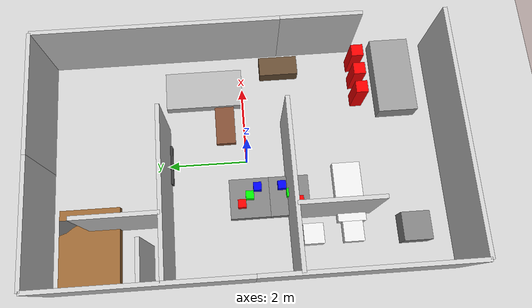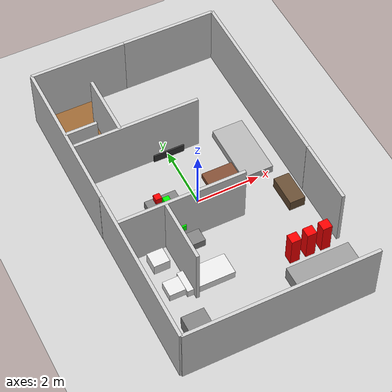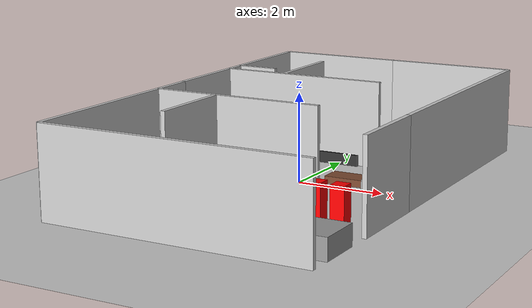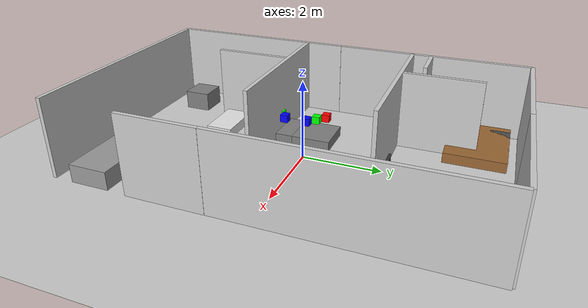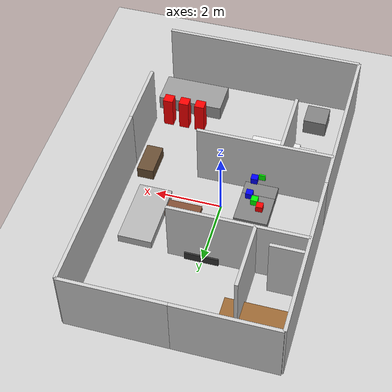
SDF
<?xml version="1.0" ?>
<sdf version="1.6">
  <world name="simple_world">
    <!-- Ground Plane -->
    <include>
      <uri>model://ground_plane</uri>
    </include>

    <!-- Lighting -->
    <include>
      <uri>model://sun</uri>
    </include>

    <!-- Apartment Model -->
    <model name="apartment">
      <static>true</static>
      <!-- Outer Walls (6m x 10m apartment) -->
      <link name="outer_walls">
        <visual name="north_wall_1_visual">
          <pose>-1.5 5 1 0 0 0</pose>
          <geometry><box><size>3 0.1 2</size></box></geometry>
          <material><ambient>0.8 0.8 0.8 1</ambient></material>
        </visual>
        <collision name="north_wall_1_collision">
          <pose>-1.5 5 1 0 0 0</pose>
          <geometry><box><size>3 0.1 2</size></box></geometry>
        </collision>
        <visual name="north_wall_2_visual">
          <pose>1.5 5 1 0 0 0</pose>
          <geometry><box><size>3 0.1 2</size></box></geometry>
          <material><ambient>0.8 0.8 0.8 1</ambient></material>
        </visual>
        <collision name="north_wall_2_collision">
          <pose>1.5 5 1 0 0 0</pose>
          <geometry><box><size>3 0.1 2</size></box></geometry>
        </collision>
        <visual name="south_wall_visual">
          <pose>0 -5 1 0 0 0</pose>
          <geometry><box><size>6 0.1 2</size></box></geometry>
          <material><ambient>0.8 0.8 0.8 1</ambient></material>
        </visual>
        <collision name="south_wall_collision">
          <pose>0 -5 1 0 0 0</pose>
          <geometry><box><size>6 0.1 2</size></box></geometry>
        </collision>
        <visual name="east_wall_1_visual">
          <pose>3 2 1 0 0 1.57</pose>
          <geometry><box><size>6 0.1 2</size></box></geometry>
          <material><ambient>0.8 0.8 0.8 1</ambient></material>
        </visual>
        <collision name="east_wall_1_collision">
          <pose>3 2 1 0 0 1.57</pose>
          <geometry><box><size>6 0.1 2</size></box></geometry>
        </collision>
        <visual name="east_wall_2_visual">
          <pose>3 -2 1 0 0 1.57</pose>
          <geometry><box><size>2 0.1 2</size></box></geometry>
          <material><ambient>0.8 0.8 0.8 1</ambient></material>
        </visual>
        <collision name="east_wall_2_collision">
          <pose>3 -2 1 0 0 1.57</pose>
          <geometry><box><size>2 0.1 2</size></box></geometry>
        </collision>
        <visual name="west_wall_1_visual">
          <pose>-3 2.5 1 0 0 1.57</pose>
          <geometry><box><size>5 0.1 2</size></box></geometry>
          <material><ambient>0.8 0.8 0.8 1</ambient></material>
        </visual>
        <collision name="west_wall_1_collision">
          <pose>-3 2.5 1 0 0 1.57</pose>
          <geometry><box><size>5 0.1 2</size></box></geometry>
        </collision>
        <visual name="west_wall_2_visual">
          <pose>-3 -2.5 1 0 0 1.57</pose>
          <geometry><box><size>5 0.1 2</size></box></geometry>
          <material><ambient>0.8 0.8 0.8 1</ambient></material>
        </visual>
        <collision name="west_wall_2_collision">
          <pose>-3 -2.5 1 0 0 1.57</pose>
          <geometry><box><size>5 0.1 2</size></box></geometry>
        </collision>
      </link>

      <!-- Internal Walls -->
      <link name="internal_walls">
        <visual name="bedroom_wall_visual">
          <pose>-1 2 1 0 0 0</pose>
          <geometry><box><size>4 0.1 2</size></box></geometry>
          <material><ambient>0.8 0.8 0.8 1</ambient></material>
        </visual>
        <collision name="bedroom_wall_collision">
          <pose>-1 2 1 0 0 0</pose>
          <geometry><box><size>4 0.1 2</size></box></geometry>
        </collision>
        <visual name="closet_wall_1_visual">
          <pose>-1.5 3 1 0 0 1.57</pose>
          <geometry><box><size>2 0.1 2</size></box></geometry>
          <material><ambient>0.8 0.8 0.8 1</ambient></material>
        </visual>
        <collision name="closet_wall_1_collision">
          <pose>-1.5 3 1 0 0 1.57</pose>
          <geometry><box><size>2 0.1 2</size></box></geometry>
        </collision>
        <visual name="closet_wall_2_visual">
          <pose>-2.5 2.5 1 0 0 0</pose>
          <geometry><box><size>1 0.1 2</size></box></geometry>
          <material><ambient>0.8 0.8 0.8 1</ambient></material>
        </visual>
        <collision name="closet_wall_2_collision">
          <pose>-2.5 2.5 1 0 0 0</pose>
          <geometry><box><size>1 0.1 2</size></box></geometry>
        </collision>
        <visual name="bathroom_wall_1_visual">
          <pose>-1 -1 1 0 0 0</pose>
          <geometry><box><size>4 0.1 2</size></box></geometry>
          <material><ambient>0.8 0.8 0.8 1</ambient></material>
        </visual>
        <collision name="bathroom_wall_1_collision">
          <pose>-1 -1 1 0 0 0</pose>
          <geometry><box><size>4 0.1 2</size></box></geometry>
        </collision>
        <visual name="bathroom_wall_2_visual">
          <pose>-1.5 -2 1 0 0 1.57</pose>
          <geometry><box><size>2 0.1 2</size></box></geometry>
          <material><ambient>0.8 0.8 0.8 1</ambient></material>
        </visual>
        <collision name="bathroom_wall_2_collision">
          <pose>-1.5 -2 1 0 0 1.57</pose>
          <geometry><box><size>2 0.1 2</size></box></geometry>
        </collision>
      </link>
    </model>

    <!-- Furniture for Bedroom -->
    <model name="bedroom_bed">
      <pose>-2 4 0 0 0 0</pose>
      <link name="link">
        <visual name="visual">
          <geometry><box><size>2 1.5 0.5</size></box></geometry>
          <material><ambient>0.6 0.4 0.2 1</ambient></material>
        </visual>
        <collision name="collision">
          <geometry><box><size>2 1.5 0.5</size></box></geometry>
        </collision>
      </link>
    </model>
    <model name="bedroom_nightstand_1">
      <pose>-2.5 4.5 0 0 0 1.57</pose>
      <link name="link">
        <visual name="visual">
          <geometry><box><size>0.5 0.5 0.5</size></box></geometry>
          <material><ambient>0.3 0.3 0.3 1</ambient></material>
        </visual>
        <collision name="collision">
          <geometry><box><size>0.5 0.5 0.5</size></box></geometry>
        </collision>
      </link>
    </model>
    <model name="bedroom_nightstand_2">
      <pose>-1.5 4.5 0 0 0 1.57</pose>
      <link name="link">
        <visual name="visual">
          <geometry><box><size>0.5 0.5 0.5</size></box></geometry>
          <material><ambient>0.3 0.3 0.3 1</ambient></material>
        </visual>
        <collision name="collision">
          <geometry><box><size>0.5 0.5 0.5</size></box></geometry>
        </collision>
      </link>
    </model>

    <!-- Furniture for Living Room -->
    <model name="living_room_sofa">
      <pose>2 1 0 0 0 1.57</pose>
      <link name="link">
        <visual name="visual">
          <geometry><box><size>2 1 0.5</size></box></geometry>
          <material><ambient>0.7 0.7 0.7 1</ambient></material>
        </visual>
        <collision name="collision">
          <geometry><box><size>2 1 0.5</size></box></geometry>
        </collision>
      </link>
    </model>
    <model name="living_room_coffee_table">
      <pose>1 0.5 0 0 0 0</pose>
      <link name="link">
        <visual name="visual">
          <geometry><box><size>1 0.5 0.3</size></box></geometry>
          <material><ambient>0.5 0.3 0.2 1</ambient></material>
        </visual>
        <collision name="collision">
          <geometry><box><size>1 0.5 0.3</size></box></geometry>
        </collision>
      </link>
    </model>
    <model name="living_room_tv">
      <pose>0 2 0 0 0 3.14</pose>
      <link name="link">
        <visual name="visual">
          <geometry><box><size>1 0.2 0.5</size></box></geometry>
          <material><ambient>0.2 0.2 0.2 1</ambient></material>
        </visual>
        <collision name="collision">
          <geometry><box><size>1 0.2 0.5</size></box></geometry>
        </collision>
      </link>
    </model>
    <model name="living_room_desk">
      <pose>2.5 -1 0 0 0 1.57</pose>
      <link name="link">
        <visual name="visual">
          <geometry><box><size>1 0.5 0.7</size></box></geometry>
          <material><ambient>0.4 0.3 0.2 1</ambient></material>
        </visual>
        <collision name="collision">
          <geometry><box><size>1 0.5 0.7</size></box></geometry>
        </collision>
      </link>
    </model>

    <!-- Furniture for Kitchen -->
    <model name="kitchen_counter">
      <pose>2 -4 0 0 0 0</pose>
      <link name="link">
        <visual name="visual">
          <geometry><box><size>2 1 0.9</size></box></geometry>
          <material><ambient>0.6 0.6 0.6 1</ambient></material>
        </visual>
        <collision name="collision">
          <geometry><box><size>2 1 0.9</size></box></geometry>
        </collision>
      </link>
    </model>
    <model name="bar_stools">
      <pose>1.5 -3 0 0 0 0</pose>
      <link name="stool_1">
        <visual name="visual">
          <pose>0 0 0.5 0 0 0</pose>
          <geometry><box><size>0.3 0.3 1</size></box></geometry>
          <material><ambient>1 0 0 1</ambient></material>
        </visual>
        <collision name="collision">
          <pose>0 0 0.5 0 0 0</pose>
          <geometry><box><size>0.3 0.3 1</size></box></geometry>
        </collision>
      </link>
      <link name="stool_2">
        <visual name="visual">
          <pose>0.5 0 0.5 0 0 0</pose>
          <geometry><box><size>0.3 0.3 1</size></box></geometry>
          <material><ambient>1 0 0 1</ambient></material>
        </visual>
        <collision name="collision">
          <pose>0.5 0 0.5 0 0 0</pose>
          <geometry><box><size>0.3 0.3 1</size></box></geometry>
        </collision>
      </link>
      <link name="stool_3">
        <visual name="visual">
          <pose>1 0 0.5 0 0 0</pose>
          <geometry><box><size>0.3 0.3 1</size></box></geometry>
          <material><ambient>1 0 0 1</ambient></material>
        </visual>
        <collision name="collision">
          <pose>1 0 0.5 0 0 0</pose>
          <geometry><box><size>0.3 0.3 1</size></box></geometry>
        </collision>
      </link>
    </model>

    <!-- Furniture for Bathroom -->
    <model name="toilet">
      <pose>-2 -1.5 0 0 0 1.57</pose>
      <link name="link">
        <visual name="visual">
          <geometry><box><size>0.5 0.5 0.7</size></box></geometry>
          <material><ambient>0.9 0.9 0.9 1</ambient></material>
        </visual>
        <collision name="collision">
          <geometry><box><size>0.5 0.5 0.7</size></box></geometry>
        </collision>
      </link>
    </model>
    <model name="sink">
      <pose>-2 -2.5 0 0 0 1.57</pose>
      <link name="link">
        <visual name="visual">
          <geometry><box><size>0.5 0.5 0.5</size></box></geometry>
          <material><ambient>0.9 0.9 0.9 1</ambient></material>
        </visual>
        <collision name="collision">
          <geometry><box><size>0.5 0.5 0.5</size></box></geometry>
        </collision>
      </link>
    </model>
    <model name="bathtub">
      <pose>-1 -2.5 0 0 0 0</pose>
      <link name="link">
        <visual name="visual">
          <geometry><box><size>1.5 0.7 0.5</size></box></geometry>
          <material><ambient>0.9 0.9 0.9 1</ambient></material>
        </visual>
        <collision name="collision">
          <geometry><box><size>1.5 0.7 0.5</size></box></geometry>
        </collision>
      </link>
    </model>

    <!-- Mechanical Closet -->
    <model name="washer">
      <pose>-2 -4 0 0 0 0</pose>
      <link name="link">
        <visual name="visual">
          <geometry><box><size>0.7 0.7 1</size></box></geometry>
          <material><ambient>0.5 0.5 0.5 1</ambient></material>
        </visual>
        <collision name="collision">
          <geometry><box><size>0.7 0.7 1</size></box></geometry>
        </collision>
      </link>
    </model>

    <!-- Containers with Colored Blocks in Living Room -->
    <model name="container_1">
      <pose>-1 0 0 0 0 0</pose>
      <static>true</static>
      <link name="link">
        <visual name="visual">
          <geometry><box><size>1 1 0.5</size></box></geometry>
          <material><ambient>0.5 0.5 0.5 1</ambient></material>
        </visual>
        <collision name="collision">
          <geometry><box><size>1 1 0.5</size></box></geometry>
        </collision>
      </link>
    </model>
    <model name="container_2">
      <pose>-1 -1 0 0 0 0</pose>
      <static>true</static>
      <link name="link">
        <visual name="visual">
          <geometry><box><size>1 1 0.5</size></box></geometry>
          <material><ambient>0.5 0.5 0.5 1</ambient></material>
        </visual>
        <collision name="collision">
          <geometry><box><size>1 1 0.5</size></box></geometry>
        </collision>
      </link>
    </model>

    <!-- Colored Blocks in Container 1 -->
    <model name="red_block_1">
      <pose>-1.2 0.2 0.6 0 0 0</pose>
      <static>false</static>
      <link name="link">
        <visual name="visual">
          <geometry><box><size>0.2 0.2 0.2</size></box></geometry>
          <material><ambient>1 0 0 1</ambient></material>
        </visual>
        <collision name="collision">
          <geometry><box><size>0.2 0.2 0.2</size></box></geometry>
        </collision>
        <inertial>
          <mass>0.1</mass>
          <inertia>
            <ixx>0.0001</ixx>
            <ixy>0</ixy>
            <ixz>0</ixz>
            <iyy>0.0001</iyy>
            <iyz>0</iyz>
            <izz>0.0001</izz>
          </inertia>
        </inertial>
      </link>
    </model>
    <model name="green_block_1">
      <pose>-1 0 0.6 0 0 0</pose>
      <static>false</static>
      <link name="link">
        <visual name="visual">
          <geometry><box><size>0.2 0.2 0.2</size></box></geometry>
          <material><ambient>0 1 0 1</ambient></material>
        </visual>
        <collision name="collision">
          <geometry><box><size>0.2 0.2 0.2</size></box></geometry>
        </collision>
        <inertial>
          <mass>0.1</mass>
          <inertia>
            <ixx>0.0001</ixx>
            <ixy>0</ixy>
            <ixz>0</ixz>
            <iyy>0.0001</iyy>
            <iyz>0</iyz>
            <izz>0.0001</izz>
          </inertia>
        </inertial>
      </link>
    </model>
    <model name="blue_block_1">
      <pose>-0.8 -0.2 0.6 0 0 0</pose>
      <static>false</static>
      <link name="link">
        <visual name="visual">
          <geometry><box><size>0.2 0.2 0.2</size></box></geometry>
          <material><ambient>0 0 1 1</ambient></material>
        </visual>
        <collision name="collision">
          <geometry><box><size>0.2 0.2 0.2</size></box></geometry>
        </collision>
        <inertial>
          <mass>0.1</mass>
          <inertia>
            <ixx>0.0001</ixx>
            <ixy>0</ixy>
            <ixz>0</ixz>
            <iyy>0.0001</iyy>
            <iyz>0</iyz>
            <izz>0.0001</izz>
          </inertia>
        </inertial>
      </link>
    </model>

    <!-- Colored Blocks in Container 2 -->
    <model name="red_block_2">
      <pose>-1.2 -1.2 0.6 0 0 0</pose>
      <static>false</static>
      <link name="link">
        <visual name="visual">
          <geometry><box><size>0.2 0.2 0.2</size></box></geometry>
          <material><ambient>1 0 0 1</ambient></material>
        </visual>
        <collision name="collision">
          <geometry><box><size>0.2 0.2 0.2</size></box></geometry>
        </collision>
        <inertial>
          <mass>0.1</mass>
          <inertia>
            <ixx>0.0001</ixx>
            <ixy>0</ixy>
            <ixz>0</ixz>
            <iyy>0.0001</iyy>
            <iyz>0</iyz>
            <izz>0.0001</izz>
          </inertia>
        </inertial>
      </link>
    </model>
    <model name="green_block_2">
      <pose>-1 -1 0.6 0 0 0</pose>
      <static>false</static>
      <link name="link">
        <visual name="visual">
          <geometry><box><size>0.2 0.2 0.2</size></box></geometry>
          <material><ambient>0 1 0 1</ambient></material>
        </visual>
        <collision name="collision">
          <geometry><box><size>0.2 0.2 0.2</size></box></geometry>
        </collision>
        <inertial>
          <mass>0.1</mass>
          <inertia>
            <ixx>0.0001</ixx>
            <ixy>0</ixy>
            <ixz>0</ixz>
            <iyy>0.0001</iyy>
            <iyz>0</iyz>
            <izz>0.0001</izz>
          </inertia>
        </inertial>
      </link>
    </model>
    <model name="blue_block_2">
      <pose>-0.8 -0.8 0.6 0 0 0</pose>
      <static>false</static>
      <link name="link">
        <visual name="visual">
          <geometry><box><size>0.2 0.2 0.2</size></box></geometry>
          <material><ambient>0 0 1 1</ambient></material>
        </visual>
        <collision name="collision">
          <geometry><box><size>0.2 0.2 0.2</size></box></geometry>
        </collision>
        <inertial>
          <mass>0.1</mass>
          <inertia>
            <ixx>0.0001</ixx>
            <ixy>0</ixy>
            <ixz>0</ixz>
            <iyy>0.0001</iyy>
            <iyz>0</iyz>
            <izz>0.0001</izz>
          </inertia>
        </inertial>
      </link>
    </model>
  </world>
</sdf>
